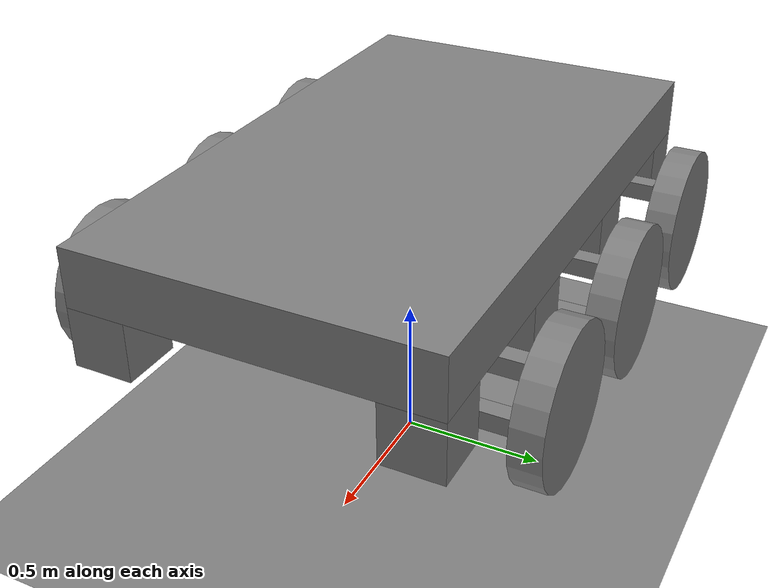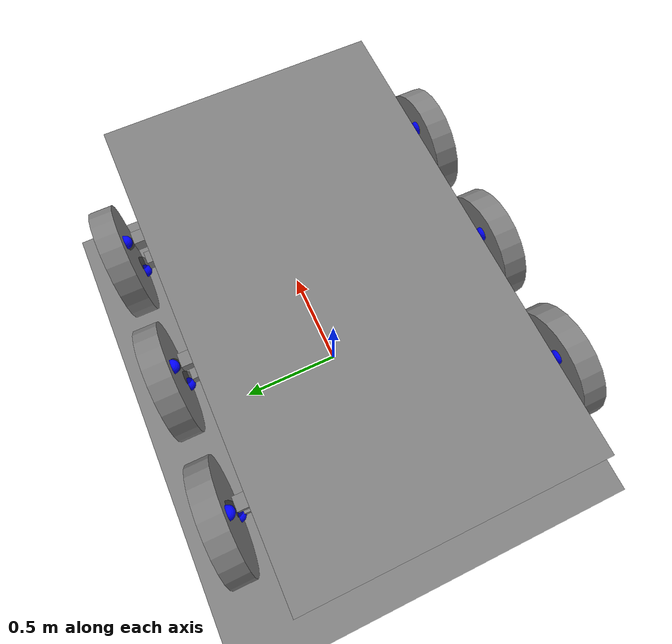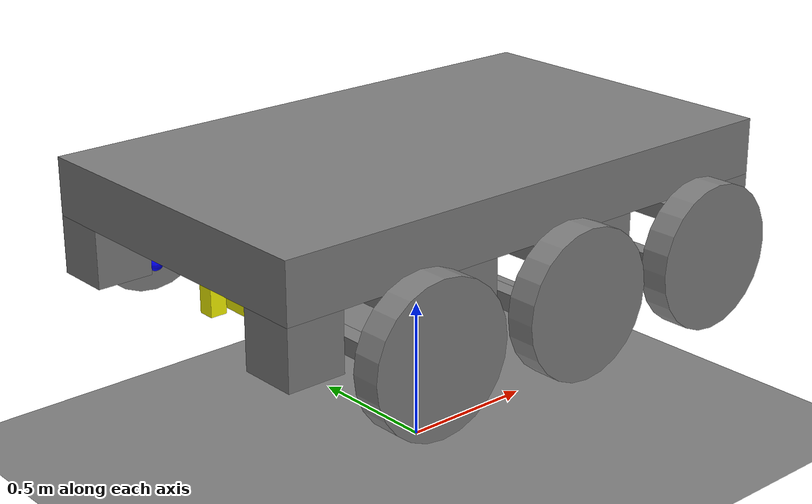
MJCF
<?xml version='1.0' encoding='UTF-8'?>
<mujoco>

	<option timestep="1e-4"/>
	<option gravity="0 0 -9.8"/>

    <worldbody>

        <!--Polygon-->
        <body name="floor" pos="0 0 0">
            <geom type="plane" size="10 10 0.1"/>
        </body>
        <!--Rover starts here-->
        <!--Base body-->
        <body pos = "0 0 1">
            <joint name = "cart" type = "free"/>
            <geom type = "box" size = "1 0.6 0.1"/>
            <geom type = "box" size = "0.1 0.1 0.1" pos = "0.9 0.5 -0.2"/>
            <geom type = "box" size = "0.1 0.1 0.1" pos = "0.3 0.5 -0.2"/>
            <geom type = "box" size = "0.1 0.1 0.1" pos = "-0.3 0.5 -0.2"/>
            <geom type = "box" size = "0.1 0.1 0.1" pos = "-0.9 0.5 -0.2"/>
            <geom type = "box" size = "0.1 0.1 0.1" pos = "0.9 -0.5 -0.2"/>
            <geom type = "box" size = "0.1 0.1 0.1" pos = "0.3 -0.5 -0.2"/>
            <geom type = "box" size = "0.1 0.1 0.1" pos = "-0.3 -0.5 -0.2"/>
            <geom type = "box" size = "0.1 0.1 0.1" pos = "-0.9 -0.5 -0.2"/>

            <!--Wheel bases start here-->
            <!--First pair-->
            <body pos = "0.5 0 -0.25">
                <geom type = "box" size = "0.03 0.03 0.15" rgba = "1 1 0 1" pos = "0 -0.2 0"/>
                <geom type = "box" size = "0.03 0.03 0.15" rgba = "1 1 0 1" pos = "0 0.2 0"/>
                <geom type = "box" size = "0.03 0.3 0.03" rgba = "1 1 0 1" pos = "0.06 0 0.1"/>
                <geom type = "box" size = "0.03 0.3 0.03" rgba = "1 1 0 1" pos = "0.06 0 -0.1"/>

                <!--Double Wishbone starts here-->
                <!--Left Upper Arm-->
                <body pos = "0.12 0.27 0.1">
                    <joint type = "hinge" axis = "1 0 0"/>
                    <geom type = "cylinder" size ="0.03 0.03" euler = "0 90 0" rgba ="1 0 0 1"/>
                    <geom type = "box" size = "0.03 0.2 0.03" pos = "0 0.2 0"/> <!-- size = "0.03 N 0.03"... pos = "0 N 0"-->
                    <body pos = "0 0.43 0"> <!-- body pos = "0 -(2*N+0.03) 0"-->
                        <site name ="upLArm1" size = "0.03" rgba = "0 0 0 0.4"/>
                    </body>
                </body>

                <!--Left Lower Arm-->
                <body pos = "0.12 0.27 -0.1">
                    <joint type = "hinge" axis = "1 0 0" damping="10"/>
                    <geom type = "cylinder" size ="0.03 0.03" euler = "0 90 0" rgba ="1 0 0 1"/>
                    <geom type = "box" size = "0.03 0.2 0.03" pos = "0 0.2 0"/> <!-- size = "0.03 N 0.03"... pos = "0 N 0"-->
                    <body pos = "0 0.43 0"> <!-- body pos = "0 -(2*N+0.03) 0"-->
                        <site name ="downLArm1" size = "0.03" rgba = "0 0 0 0.4"/>
                    </body>
                </body>

                <!--Right Upper Arm-->
                <body pos = "0.12 -0.27 0.1">
                    <joint type = "hinge" axis = "1 0 0"/>
                    <geom type = "cylinder" size ="0.03 0.03" euler = "0 90 0" rgba ="1 0 0 1"/>
                    <geom type = "box" size = "0.03 0.2 0.03" pos = "0 -0.2 0"/> <!-- size = "0.03 N 0.03"... pos = "0 N 0"-->
                    <body pos = "0 -0.43 0"> <!-- body pos = "0 -(2*N+0.03) 0"-->
                        <site name ="upRArm1" size = "0.03" rgba = "0 0 0 0.4"/>
                    </body>
                </body>

                <!--Right Lower Arm-->
                <body pos = "0.12 -0.27 -0.1">
                    <joint type = "hinge" axis = "1 0 0" damping="10"/>
                    <geom type = "cylinder" size ="0.03 0.03" euler = "0 90 0" rgba ="1 0 0 1"/>
                    <geom type = "box" size = "0.03 0.2 0.03" pos = "0 -0.2 0"/> <!-- size = "0.03 N 0.03"... pos = "0 N 0"-->
                    <body pos = "0 -0.43 0"> <!-- body pos = "0 -(2*N+0.03) 0"-->
                        <site name ="downRArm1" size = "0.03" rgba = "0 0 0 0.4"/>
                    </body>
                </body>

                <!--Wheels-->
                <body pos = "0.1 0.75 0">
                    <joint name = "wheelL1" type = "hinge" axis = "0 1 0"/>
                    <geom type = "cylinder" euler = "90 0 0" size = "0.25 0.05"/>
                    <site name = "connectLUp1" size = "0.03" pos = "0 -0.05 0.15" rgba = "0 0 1 1"/>
                    <site name = "connectLDown1" size = "0.03" pos = "0 -0.05 -0.15" rgba = "0 0 1 1"/>
                </body>

                <body pos = "0.1 -0.75 0">
                    <joint name = "wheelR1" type = "hinge" axis = "0 1 0"/>
                    <geom type = "cylinder" euler = "90 0 0" size = "0.25 0.05"/>
                    <site name = "connectRUp1" size = "0.03" pos = "0 0.05 0.15" rgba = "0 0 1 1"/>
                    <site name = "connectRDown1" size = "0.03" pos = "0 0.05 -0.15" rgba = "0 0 1 1"/>
                </body>

            </body>
            <!--Second pair-->
            <body pos = "-0.1 0 -0.25">
                <geom type = "box" size = "0.03 0.03 0.15" rgba = "1 1 0 1" pos = "0 -0.2 0"/>
                <geom type = "box" size = "0.03 0.03 0.15" rgba = "1 1 0 1" pos = "0 0.2 0"/>
                <geom type = "box" size = "0.03 0.3 0.03" rgba = "1 1 0 1" pos = "0.06 0 0.1"/>
                <geom type = "box" size = "0.03 0.3 0.03" rgba = "1 1 0 1" pos = "0.06 0 -0.1"/>

                <!--Left Upper Arm-->
                <body pos = "0.12 0.27 0.1">
                    <joint type = "hinge" axis = "1 0 0"/>
                    <geom type = "cylinder" size ="0.03 0.03" euler = "0 90 0" rgba ="1 0 0 1"/>
                    <geom type = "box" size = "0.03 0.2 0.03" pos = "0 0.2 0"/> <!-- size = "0.03 N 0.03"... pos = "0 N 0"-->
                    <body pos = "0 0.43 0"> <!-- body pos = "0 (2*N+0.03) 0"-->
                        <site name ="upLArm2" size = "0.03" rgba = "0 0 0 0.4"/>
                    </body>
                </body>

                <!--Left Lower Arm-->
                <body pos = "0.12 0.27 -0.1">
                    <joint type = "hinge" axis = "1 0 0" damping="10"/>
                    <geom type = "cylinder" size ="0.03 0.03" euler = "0 90 0" rgba ="1 0 0 1"/>
                    <geom type = "box" size = "0.03 0.2 0.03" pos = "0 0.2 0"/> <!-- size = "0.03 N 0.03"... pos = "0 N 0"-->
                    <body pos = "0 0.43 0"> <!-- body pos = "0 (2*N+0.03) 0"-->
                        <site name ="downLArm2" size = "0.03" rgba = "0 0 0 0.4"/>
                    </body>
                </body>

                <!--Right Upper Arm-->
                <body pos = "0.12 -0.27 0.1">
                    <joint type = "hinge" axis = "1 0 0"/>
                    <geom type = "cylinder" size ="0.03 0.03" euler = "0 90 0" rgba ="1 0 0 1"/>
                    <geom type = "box" size = "0.03 0.2 0.03" pos = "0 -0.2 0"/> <!-- size = "0.03 N 0.03"... pos = "0 N 0"-->
                    <body pos = "0 -0.43 0"> <!-- body pos = "0 -(2*N+0.03) 0"-->
                        <site name ="upRArm2" size = "0.03" rgba = "0 0 0 0.4"/>
                    </body>
                </body>

                <!--Right Lower Arm-->
                <body pos = "0.12 -0.27 -0.1">
                    <joint type = "hinge" axis = "1 0 0" damping="10"/>
                    <geom type = "cylinder" size ="0.03 0.03" euler = "0 90 0" rgba ="1 0 0 1"/>
                    <geom type = "box" size = "0.03 0.2 0.03" pos = "0 -0.2 0"/> <!-- size = "0.03 N 0.03"... pos = "0 N 0"-->
                    <body pos = "0 -0.43 0">
                        <site name ="downRArm2" size = "0.03" rgba = "0 0 0 0.4"/>
                    </body>
                </body>

                <!--Wheels-->
                <body pos = "0.1 0.75 0">
                    <joint name = "wheelL2" type = "hinge" axis = "0 1 0"/>
                    <geom type = "cylinder" euler = "90 0 0" size = "0.25 0.05"/>
                    <site name = "connectLUp2" size = "0.03" pos = "0 -0.05 0.15" rgba = "0 0 1 1"/>
                    <site name = "connectLDown2" size = "0.03" pos = "0 -0.05 -0.15" rgba = "0 0 1 1"/>
                </body>

                <body pos = "0.1 -0.75 0">
                    <joint name = "wheelR2" type = "hinge" axis = "0 1 0"/>
                    <geom type = "cylinder" euler = "90 0 0" size = "0.25 0.05"/>
                    <site name = "connectRUp2" size = "0.03" pos = "0 0.05 0.15" rgba = "0 0 1 1"/>
                    <site name = "connectRDown2" size = "0.03" pos = "0 0.05 -0.15" rgba = "0 0 1 1"/>
                </body>

            </body>

            <!--Third pair-->
            <body pos = "-0.7 0 -0.25">
                <geom type = "box" size = "0.03 0.03 0.15" rgba = "1 1 0 1" pos = "0 -0.2 0"/>
                <geom type = "box" size = "0.03 0.03 0.15" rgba = "1 1 0 1" pos = "0 0.2 0"/>
                <geom type = "box" size = "0.03 0.3 0.03" rgba = "1 1 0 1" pos = "0.06 0 0.1"/>
                <geom type = "box" size = "0.03 0.3 0.03" rgba = "1 1 0 1" pos = "0.06 0 -0.1"/>

                <body pos = "0.12 0.27 0.1">
                    <joint type = "hinge" axis = "1 0 0"/>
                    <geom type = "cylinder" size ="0.03 0.03" euler = "0 90 0" rgba ="1 0 0 1"/>
                    <geom type = "box" size = "0.03 0.2 0.03" pos = "0 0.2 0"/> <!-- size = "0.03 N 0.03"... pos = "0 N 0"-->
                    <body pos = "0 0.43 0"> <!-- body pos = "0 (2*N+0.03) 0"-->
                        <site name ="upLArm3" size = "0.03" rgba = "0 0 0 0.4"/>
                    </body>
                </body>

                <!--Left Lower Arm-->
                <body pos = "0.12 0.27 -0.1">
                    <joint type = "hinge" axis = "1 0 0" damping="10"/>
                    <geom type = "cylinder" size ="0.03 0.03" euler = "0 90 0" rgba ="1 0 0 1"/>
                    <geom type = "box" size = "0.03 0.2 0.03" pos = "0 0.2 0"/> <!-- size = "0.03 N 0.03"... pos = "0 N 0"-->
                    <body pos = "0 0.43 0"> <!-- body pos = "0 (2*N+0.03) 0"-->
                        <site name ="downLArm3" size = "0.03" rgba = "0 0 0 0.4"/>
                    </body>
                </body>

                <!--Right Upper Arm-->
                <body pos = "0.12 -0.27 0.1">
                    <joint type = "hinge" axis = "1 0 0"/>
                    <geom type = "cylinder" size ="0.03 0.03" euler = "0 90 0" rgba ="1 0 0 1"/>
                    <geom type = "box" size = "0.03 0.2 0.03" pos = "0 -0.2 0"/> <!-- size = "0.03 N 0.03"... pos = "0 N 0"-->
                    <body pos = "0 -0.43 0"> <!-- body pos = "0 -(2*N+0.03) 0"-->
                        <site name ="upRArm3" size = "0.03" rgba = "0 0 0 0.4"/>
                    </body>
                </body>

                <!--Right Lower Arm-->
                <body pos = "0.12 -0.27 -0.1">
                    <joint type = "hinge" axis = "1 0 0" damping="10"/>
                    <geom type = "cylinder" size ="0.03 0.03" euler = "0 90 0" rgba ="1 0 0 1"/>
                    <geom type = "box" size = "0.03 0.2 0.03" pos = "0 -0.2 0"/> <!-- size = "0.03 N 0.03"... pos = "0 N 0"-->
                    <body pos = "0 -0.43 0"> <!-- body pos = "0 -(2*N+0.03) 0"-->
                        <site name ="downRArm3" size = "0.03" rgba = "0 0 0 0.4"/>
                    </body>
                </body>

                <!--Wheels-->
                <body pos = "0.1 0.75 0">
                    <joint name = "wheelL3" type = "hinge" axis = "0 1 0"/>
                    <geom type = "cylinder" euler = "90 0 0" size = "0.25 0.05"/>
                    <site name = "connectLUp3" size = "0.03" pos = "0 -0.05 0.15" rgba = "0 0 1 1"/>
                    <site name = "connectLDown3" size = "0.03" pos = "0 -0.05 -0.15" rgba = "0 0 1 1"/>
                </body>

                <body pos = "0.1 -0.75 0">
                    <joint name = "wheelR3" type = "hinge" axis = "0 1 0"/>
                    <geom type = "cylinder" euler = "90 0 0" size = "0.25 0.05"/>
                    <site name = "connectRUp3" size = "0.03" pos = "0 0.05 0.15" rgba = "0 0 1 1"/>
                    <site name = "connectRDown3" size = "0.03" pos = "0 0.05 -0.15" rgba = "0 0 1 1"/>
                </body>

            </body>
        </body>

    </worldbody>

    <equality>
        <connect site1="upLArm1" site2="connectLUp1"/>
        <connect site1="downLArm1" site2="connectLDown1"/>
        <connect site1="upRArm1" site2="connectRUp1"/>
        <connect site1="downRArm1" site2="connectRDown1"/>

        <connect site1="upLArm2" site2="connectLUp2"/>
        <connect site1="downLArm2" site2="connectLDown2"/>
        <connect site1="upRArm2" site2="connectRUp2"/>
        <connect site1="downRArm2" site2="connectRDown2"/>

        <connect site1="upLArm3" site2="connectLUp3"/>
        <connect site1="downLArm3" site2="connectLDown3"/>
        <connect site1="upRArm3" site2="connectRUp3"/>
        <connect site1="downRArm3" site2="connectRDown3"/>
    </equality>

    <actuator>
        <motor name="firstMotor" joint="wheelL1" ctrllimited="true" ctrlrange="-100 100" gear="20"/>
        <motor name="secondMotor" joint="wheelR1" ctrllimited="true" ctrlrange="-100 100" gear="20"/>
        <motor name="thirdMotor" joint="wheelL2" ctrllimited="true" ctrlrange="-100 100" gear="20"/>
        <motor name="fourthMotor" joint="wheelR2" ctrllimited="true" ctrlrange="-100 100" gear="20"/>
        <motor name="fifthMotor" joint="wheelL3" ctrllimited="true" ctrlrange="-100 100" gear="20"/>
        <motor name="sixthMotor" joint="wheelR3" ctrllimited="true" ctrlrange="-100 100" gear="20"/>
    </actuator>

</mujoco>
